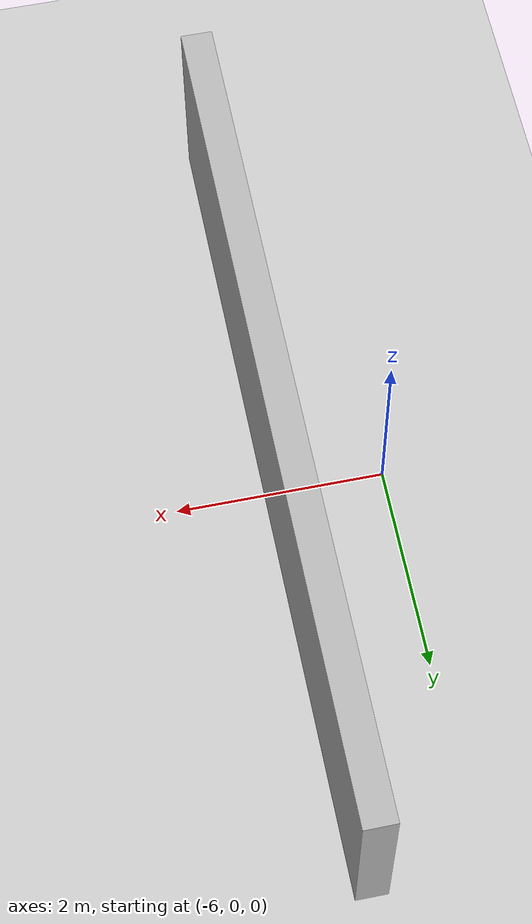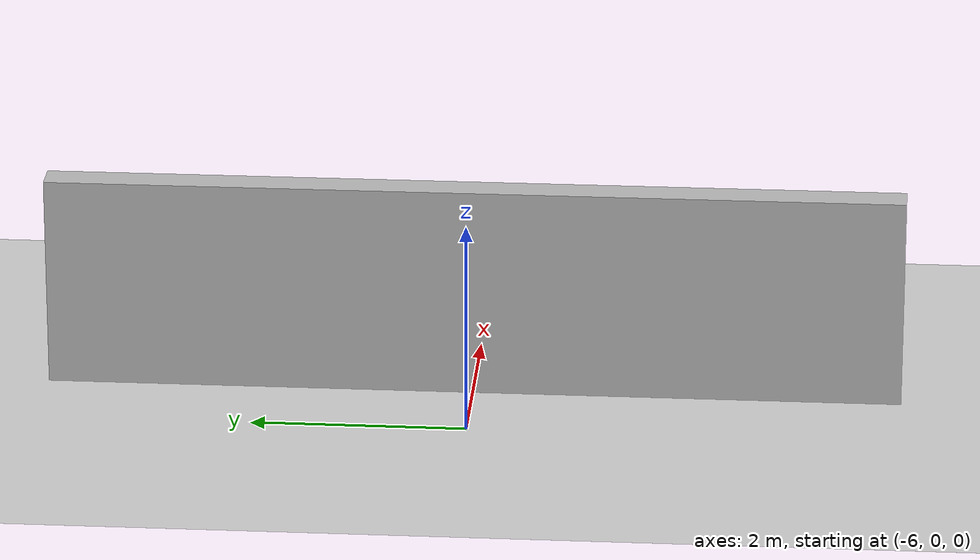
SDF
<sdf version='1.7'>
  <world name='default'>

    <gravity>0 0 -9.8</gravity>

    <physics type='ode'>
      <max_step_size>0.001</max_step_size>
      <real_time_factor>1</real_time_factor>
      <real_time_update_rate>1000</real_time_update_rate>
    </physics>

    <scene>
      <ambient>0.4 0.4 0.4 1</ambient>
      <background>0.7 0.7 0.7 1</background>
      <shadows>1</shadows>
    </scene>

    <light name='sun' type='directional'>
      <cast_shadows>1</cast_shadows>
      <pose>0 0 10 0 0 0</pose>
      <diffuse>0.8 0.8 0.8 1</diffuse>
      <specular>0.2 0.2 0.2 1</specular>
      <attenuation>
        <range>1000</range>
        <constant>0.9</constant>
        <linear>0.01</linear>
        <quadratic>0.001</quadratic>
      </attenuation>
      <direction>-0.5 0.1 -0.9</direction>
      <spot>
        <inner_angle>0</inner_angle>
        <outer_angle>0</outer_angle>
        <falloff>0</falloff>
      </spot>
    </light>

    <model name='ground_plane'>
      <static>1</static>

      <link name='link'>
        <collision name='collision'>
          <geometry>
            <plane>
              <normal>0 0 1</normal>
              <size>100 100</size>
            </plane>
          </geometry>
          <surface>
            <contact>
              <collide_bitmask>65535</collide_bitmask>
              <ode/>
            </contact>
            <friction>
              <ode>
                <mu>100</mu>
                <mu2>50</mu2>
              </ode>
              <torsional>
                <ode/>
              </torsional>
            </friction>
            <bounce/>
          </surface>
          <max_contacts>10</max_contacts>
        </collision>

        <visual name='visual'>
          <cast_shadows>0</cast_shadows>
          <geometry>
            <plane>
              <normal>0 0 1</normal>
              <size>100 100</size>
            </plane>
          </geometry>
          <material>
            <script>
              <uri>file://media/materials/scripts/gazebo.material</uri>
              <name>Gazebo/Grey</name>
            </script>
          </material>
        </visual>

        <self_collide>0</self_collide>

        <enable_wind>0</enable_wind>

        <kinematic>0</kinematic>
      </link>
    </model>

    <model name='unit_box'>
      <static>1</static>
      <pose>-5.0 0.0 1.0 0 0 0</pose>
        <link name='link'>
        <inertial>
          <mass>100</mass>
          <inertia>
            <ixx>566.66</ixx>
            <ixy>0</ixy>
            <ixz>0</ixz>
            <iyy>34.08</iyy>
            <iyz>0</iyz>
            <izz>534.08</izz>
          </inertia>
          <pose>0 0 0 0 0 0</pose>
        </inertial>

        <collision name='collision'>
          <geometry>
            <box>
              <size>0.3 8 2</size>
            </box>
          </geometry>
        </collision>

        <visual name='visual'>
          <geometry>
            <box>
              <size>0.3 8 2</size>
            </box>
          </geometry>
        </visual>
      </link>
    </model>
  </world>
</sdf>
